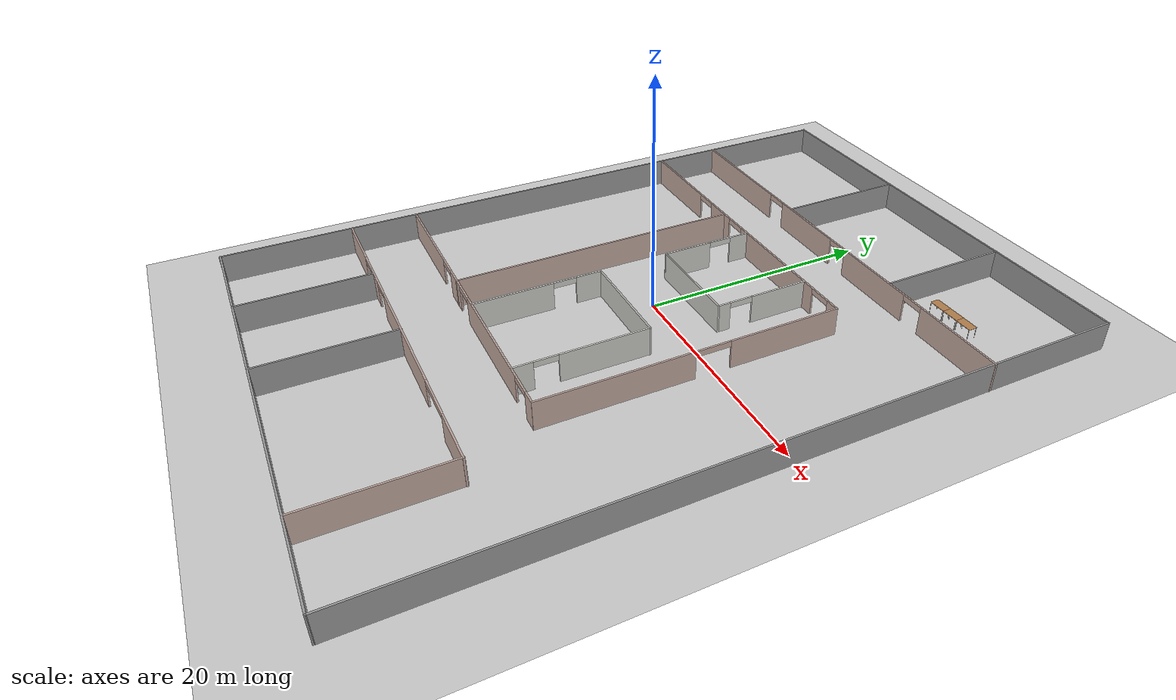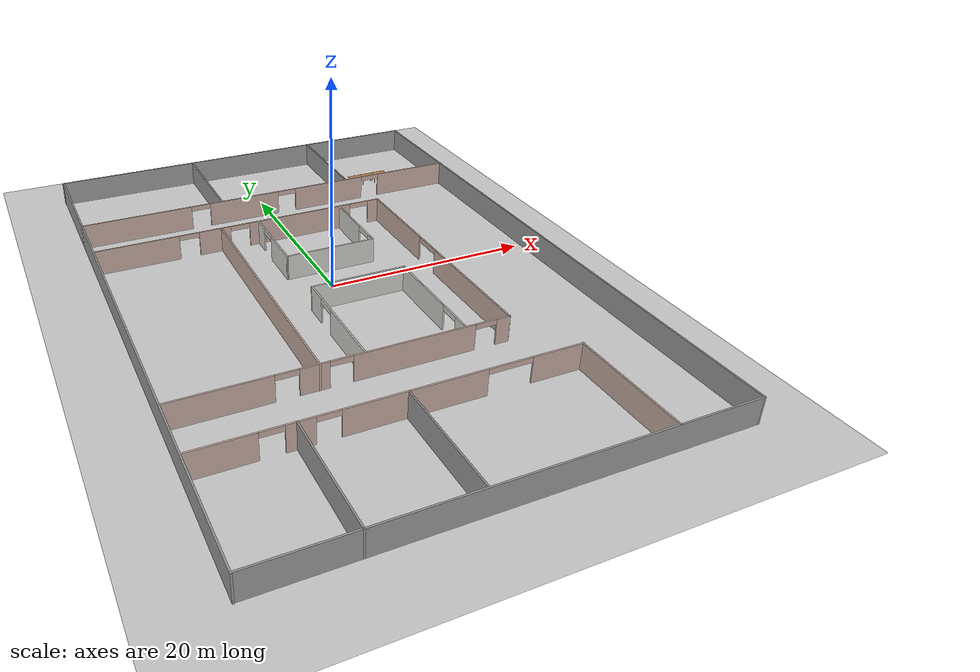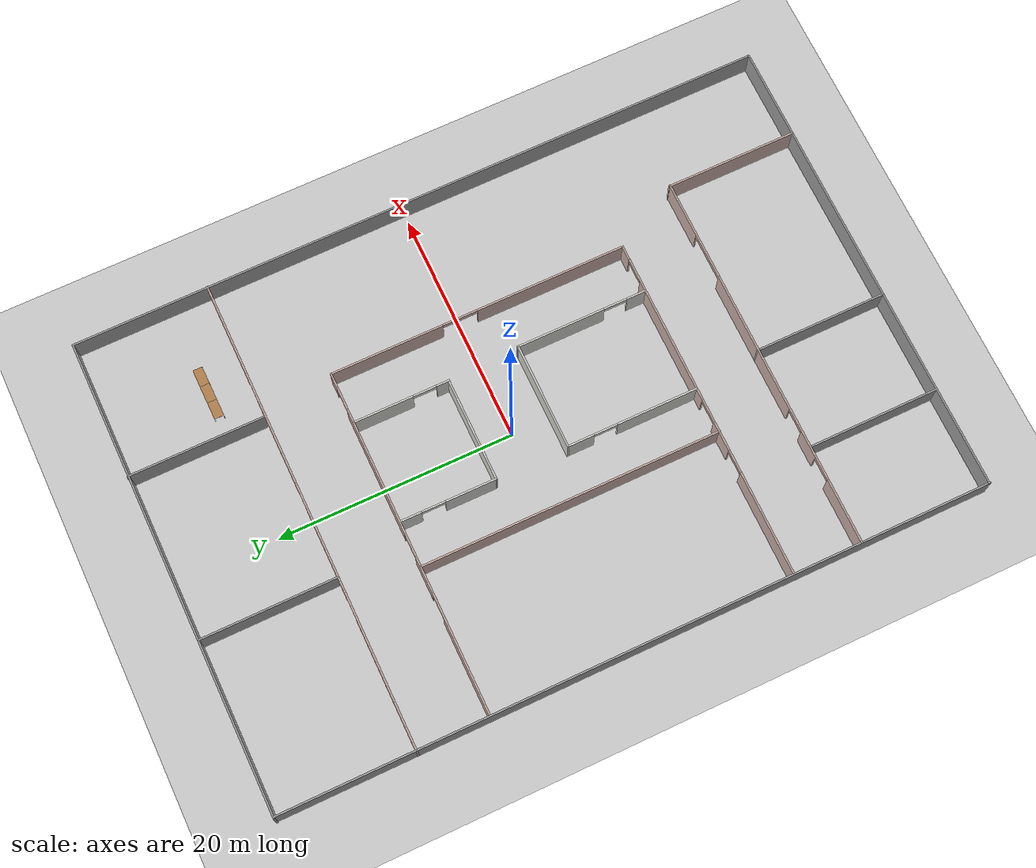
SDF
<sdf version="1.7">
 <world name="default">
  <include><uri>model://ground_plane</uri></include>
  <model name="tongfang1">
   <pose>0.460781 -1.38805 0 0 -0 0</pose>
   <link name="Wall_11">
    <collision name="Wall_11_Collision">
     <geometry><box><size>25.5 0.15 2.5</size></box></geometry>
     <pose>0 0 1.25 0 -0 0</pose>
    </collision>
    <visual name="Wall_11_Visual">
     <pose>0 0 1.25 0 -0 0</pose>
     <geometry><box><size>25.5 0.15 2.5</size></box></geometry>
     <material>
      <script><uri>file://media/materials/scripts/gazebo.material</uri><name>Gazebo/Grey</name></script>
      <ambient>0.760784 0.662745 0.627451 1</ambient>
     </material>
     <meta><layer>0</layer></meta>
    </visual>
    <pose>-7.71283 -0.319512 0 0 -0 -1.5708</pose>
   </link>
   <link name="Wall_12">
    <pose>0.841773 -12.9694 0 0 -0 0</pose>
    <visual name="Wall_12_Visual_0">
     <pose>-8.16378 0 1.25 0 -0 0</pose>
     <geometry><box><size>0.931636 0.15 2.5</size></box></geometry>
     <material>
      <script><uri>file://media/materials/scripts/gazebo.material</uri><name>Gazebo/Grey</name></script>
      <ambient>0.760784 0.662745 0.627451 1</ambient>
     </material>
     <meta><layer>0</layer></meta>
    </visual>
    <collision name="Wall_12_Collision_0">
     <geometry><box><size>0.931636 0.15 2.5</size></box></geometry>
     <pose>-8.16378 0 1.25 0 -0 0</pose>
    </collision>
    <visual name="Wall_12_Visual_1">
     <pose>-0.184896 0 1.25 0 -0 0</pose>
     <geometry><box><size>11.0261 0.15 2.5</size></box></geometry>
     <material>
      <script><uri>file://media/materials/scripts/gazebo.material</uri><name>Gazebo/Grey</name></script>
      <ambient>0.760784 0.662745 0.627451 1</ambient>
     </material>
     <meta><layer>0</layer></meta>
    </visual>
    <collision name="Wall_12_Collision_1">
     <geometry><box><size>11.0261 0.15 2.5</size></box></geometry>
     <pose>-0.184896 0 1.25 0 -0 0</pose>
    </collision>
    <visual name="Wall_12_Visual_2">
     <pose>7.97889 0 1.25 0 -0 0</pose>
     <geometry><box><size>1.30143 0.15 2.5</size></box></geometry>
     <material>
      <script><uri>file://media/materials/scripts/gazebo.material</uri><name>Gazebo/Grey</name></script>
      <ambient>0.760784 0.662745 0.627451 1</ambient>
     </material>
     <meta><layer>0</layer></meta>
    </visual>
    <collision name="Wall_12_Collision_2">
     <geometry><box><size>1.30143 0.15 2.5</size></box></geometry>
     <pose>7.97889 0 1.25 0 -0 0</pose>
    </collision>
    <visual name="Wall_12_Visual_3">
     <pose>-6.69797 0 2.25 0 -0 0</pose>
     <geometry><box><size>2 0.15 0.5</size></box></geometry>
     <material>
      <script><uri>file://media/materials/scripts/gazebo.material</uri><name>Gazebo/Grey</name></script>
      <ambient>0.760784 0.662745 0.627451 1</ambient>
     </material>
     <meta><layer>0</layer></meta>
    </visual>
    <collision name="Wall_12_Collision_3">
     <geometry><box><size>2 0.15 0.5</size></box></geometry>
     <pose>-6.69797 0 2.25 0 -0 0</pose>
    </collision>
    <visual name="Wall_12_Visual_4">
     <pose>6.32817 0 2.25 0 -0 0</pose>
     <geometry><box><size>2 0.15 0.5</size></box></geometry>
     <material>
      <script><uri>file://media/materials/scripts/gazebo.material</uri><name>Gazebo/Grey</name></script>
      <ambient>0.760784 0.662745 0.627451 1</ambient>
     </material>
     <meta><layer>0</layer></meta>
    </visual>
    <collision name="Wall_12_Collision_4">
     <geometry><box><size>2 0.15 0.5</size></box></geometry>
     <pose>6.32817 0 2.25 0 -0 0</pose>
    </collision>
   </link>
   <link name="Wall_16">
    <pose>-3.82458 -7.35827 0 0 -0 -1.5708</pose>
    <visual name="Wall_16_Visual_0">
     <pose>-4.45921 0 1.25 0 -0 0</pose>
     <geometry><box><size>2.33157 0.15 2.5</size></box></geometry>
     <material>
      <script><uri>file://media/materials/scripts/gazebo.material</uri><name>Gazebo/CeilingTiled</name></script>
      <ambient>1 1 1 1</ambient>
     </material>
     <meta><layer>0</layer></meta>
    </visual>
    <collision name="Wall_16_Collision_0">
     <geometry><box><size>2.33157 0.15 2.5</size></box></geometry>
     <pose>-4.45921 0 1.25 0 -0 0</pose>
    </collision>
    <visual name="Wall_16_Visual_1">
     <pose>2.16579 0 1.25 0 -0 0</pose>
     <geometry><box><size>6.91843 0.15 2.5</size></box></geometry>
     <material>
      <script><uri>file://media/materials/scripts/gazebo.material</uri><name>Gazebo/CeilingTiled</name></script>
      <ambient>1 1 1 1</ambient>
     </material>
     <meta><layer>0</layer></meta>
    </visual>
    <collision name="Wall_16_Collision_1">
     <geometry><box><size>6.91843 0.15 2.5</size></box></geometry>
     <pose>2.16579 0 1.25 0 -0 0</pose>
    </collision>
    <visual name="Wall_16_Visual_2">
     <pose>-2.29343 0 2.25 0 -0 0</pose>
     <geometry><box><size>2 0.15 0.5</size></box></geometry>
     <material>
      <script><uri>file://media/materials/scripts/gazebo.material</uri><name>Gazebo/CeilingTiled</name></script>
      <ambient>1 1 1 1</ambient>
     </material>
     <meta><layer>0</layer></meta>
    </visual>
    <collision name="Wall_16_Collision_2">
     <geometry><box><size>2 0.15 0.5</size></box></geometry>
     <pose>-2.29343 0 2.25 0 -0 0</pose>
    </collision>
   </link>
   <link name="Wall_19">
    <pose>5.2537 -7.34878 0 0 -0 -1.5708</pose>
    <visual name="Wall_19_Visual_0">
     <pose>-1.83702 0 1.25 0 -0 0</pose>
     <geometry><box><size>7.57595 0.15 2.5</size></box></geometry>
     <material>
      <script><uri>file://media/materials/scripts/gazebo.material</uri><name>Gazebo/CeilingTiled</name></script>
      <ambient>1 1 1 1</ambient>
     </material>
     <meta><layer>0</layer></meta>
    </visual>
    <collision name="Wall_19_Collision_0">
     <geometry><box><size>7.57595 0.15 2.5</size></box></geometry>
     <pose>-1.83702 0 1.25 0 -0 0</pose>
    </collision>
    <visual name="Wall_19_Visual_1">
     <pose>4.78798 0 1.25 0 -0 0</pose>
     <geometry><box><size>1.67405 0.15 2.5</size></box></geometry>
     <material>
      <script><uri>file://media/materials/scripts/gazebo.material</uri><name>Gazebo/CeilingTiled</name></script>
      <ambient>1 1 1 1</ambient>
     </material>
     <meta><layer>0</layer></meta>
    </visual>
    <collision name="Wall_19_Collision_1">
     <geometry><box><size>1.67405 0.15 2.5</size></box></geometry>
     <pose>4.78798 0 1.25 0 -0 0</pose>
    </collision>
    <visual name="Wall_19_Visual_2">
     <pose>2.95095 0 2.25 0 -0 0</pose>
     <geometry><box><size>2 0.15 0.5</size></box></geometry>
     <material>
      <script><uri>file://media/materials/scripts/gazebo.material</uri><name>Gazebo/CeilingTiled</name></script>
      <ambient>1 1 1 1</ambient>
     </material>
     <meta><layer>0</layer></meta>
    </visual>
    <collision name="Wall_19_Collision_2">
     <geometry><box><size>2 0.15 0.5</size></box></geometry>
     <pose>2.95095 0 2.25 0 -0 0</pose>
    </collision>
   </link>
   <link name="Wall_21">
    <pose>-3.82128 8.36959 0 0 -0 -1.57421</pose>
    <visual name="Wall_21_Visual_0">
     <pose>-3.18561 0 1.25 0 -0 0</pose>
     <geometry><box><size>1.86593 0.15 2.5</size></box></geometry>
     <material>
      <script><uri>file://media/materials/scripts/gazebo.material</uri><name>Gazebo/CeilingTiled</name></script>
      <ambient>1 1 1 1</ambient>
     </material>
     <meta><layer>0</layer></meta>
    </visual>
    <collision name="Wall_21_Collision_0">
     <geometry><box><size>1.86593 0.15 2.5</size></box></geometry>
     <pose>-3.18561 0 1.25 0 -0 0</pose>
    </collision>
    <visual name="Wall_21_Visual_1">
     <pose>1.93297 0 1.25 0 -0 0</pose>
     <geometry><box><size>4.37123 0.15 2.5</size></box></geometry>
     <material>
      <script><uri>file://media/materials/scripts/gazebo.material</uri><name>Gazebo/CeilingTiled</name></script>
      <ambient>1 1 1 1</ambient>
     </material>
     <meta><layer>0</layer></meta>
    </visual>
    <collision name="Wall_21_Collision_1">
     <geometry><box><size>4.37123 0.15 2.5</size></box></geometry>
     <pose>1.93297 0 1.25 0 -0 0</pose>
    </collision>
    <visual name="Wall_21_Visual_2">
     <pose>-1.25265 0 2.25 0 -0 0</pose>
     <geometry><box><size>2 0.15 0.5</size></box></geometry>
     <material>
      <script><uri>file://media/materials/scripts/gazebo.material</uri><name>Gazebo/CeilingTiled</name></script>
      <ambient>1 1 1 1</ambient>
     </material>
     <meta><layer>0</layer></meta>
    </visual>
    <collision name="Wall_21_Collision_2">
     <geometry><box><size>2 0.15 0.5</size></box></geometry>
     <pose>-1.25265 0 2.25 0 -0 0</pose>
    </collision>
   </link>
   <link name="Wall_23">
    <pose>5.01283 8.37814 0 0 -0 1.5708</pose>
    <visual name="Wall_23_Visual_0">
     <pose>-3.55494 0 1.25 0 -0 0</pose>
     <geometry><box><size>1.14011 0.15 2.5</size></box></geometry>
     <material>
      <script><uri>file://media/materials/scripts/gazebo.material</uri><name>Gazebo/CeilingTiled</name></script>
      <ambient>1 1 1 1</ambient>
     </material>
     <meta><layer>0</layer></meta>
    </visual>
    <collision name="Wall_23_Collision_0">
     <geometry><box><size>1.14011 0.15 2.5</size></box></geometry>
     <pose>-3.55494 0 1.25 0 -0 0</pose>
    </collision>
    <visual name="Wall_23_Visual_1">
     <pose>1.57006 0 1.25 0 -0 0</pose>
     <geometry><box><size>5.10989 0.15 2.5</size></box></geometry>
     <material>
      <script><uri>file://media/materials/scripts/gazebo.material</uri><name>Gazebo/CeilingTiled</name></script>
      <ambient>1 1 1 1</ambient>
     </material>
     <meta><layer>0</layer></meta>
    </visual>
    <collision name="Wall_23_Collision_1">
     <geometry><box><size>5.10989 0.15 2.5</size></box></geometry>
     <pose>1.57006 0 1.25 0 -0 0</pose>
    </collision>
    <visual name="Wall_23_Visual_2">
     <pose>-1.98489 0 2.25 0 -0 0</pose>
     <geometry><box><size>2 0.15 0.5</size></box></geometry>
     <material>
      <script><uri>file://media/materials/scripts/gazebo.material</uri><name>Gazebo/CeilingTiled</name></script>
      <ambient>1 1 1 1</ambient>
     </material>
     <meta><layer>0</layer></meta>
    </visual>
    <collision name="Wall_23_Collision_2">
     <geometry><box><size>2 0.15 0.5</size></box></geometry>
     <pose>-1.98489 0 2.25 0 -0 0</pose>
    </collision>
   </link>
   <link name="Wall_25">
    <pose>-13.9496 -12.9694 0 0 -0 3.14159</pose>
    <visual name="Wall_25_Visual_0">
     <pose>-5.42807 0 1.25 0 -0 0</pose>
     <geometry><box><size>1.76748 0.15 2.5</size></box></geometry>
     <material>
      <script><uri>file://media/materials/scripts/gazebo.material</uri><name>Gazebo/Grey</name></script>
      <ambient>0.760784 0.662745 0.627451 1</ambient>
     </material>
     <meta><layer>0</layer></meta>
    </visual>
    <collision name="Wall_25_Collision_0">
     <geometry><box><size>1.76748 0.15 2.5</size></box></geometry>
     <pose>-5.42807 0 1.25 0 -0 0</pose>
    </collision>
    <visual name="Wall_25_Visual_1">
     <pose>1.88374 0 1.25 0 -0 0</pose>
     <geometry><box><size>8.85615 0.15 2.5</size></box></geometry>
     <material>
      <script><uri>file://media/materials/scripts/gazebo.material</uri><name>Gazebo/Grey</name></script>
      <ambient>0.760784 0.662745 0.627451 1</ambient>
     </material>
     <meta><layer>0</layer></meta>
    </visual>
    <collision name="Wall_25_Collision_1">
     <geometry><box><size>8.85615 0.15 2.5</size></box></geometry>
     <pose>1.88374 0 1.25 0 -0 0</pose>
    </collision>
    <visual name="Wall_25_Visual_2">
     <pose>-3.54433 0 2.25 0 -0 0</pose>
     <geometry><box><size>2 0.15 0.5</size></box></geometry>
     <material>
      <script><uri>file://media/materials/scripts/gazebo.material</uri><name>Gazebo/Grey</name></script>
      <ambient>0.760784 0.662745 0.627451 1</ambient>
     </material>
     <meta><layer>0</layer></meta>
    </visual>
    <collision name="Wall_25_Collision_2">
     <geometry><box><size>2 0.15 0.5</size></box></geometry>
     <pose>-3.54433 0 2.25 0 -0 0</pose>
    </collision>
   </link>
   <link name="Wall_27">
    <pose>-3.83512 -18.7917 0 0 -0 0</pose>
    <visual name="Wall_27_Visual_0">
     <pose>-13.7052 0 1.25 0 -0 0</pose>
     <geometry><box><size>5.58965 0.15 2.5</size></box></geometry>
     <material>
      <script><uri>file://media/materials/scripts/gazebo.material</uri><name>Gazebo/Grey</name></script>
      <ambient>0.760784 0.662745 0.627451 1</ambient>
     </material>
     <meta><layer>0</layer></meta>
    </visual>
    <collision name="Wall_27_Collision_0">
     <geometry><box><size>5.58965 0.15 2.5</size></box></geometry>
     <pose>-13.7052 0 1.25 0 -0 0</pose>
    </collision>
    <visual name="Wall_27_Visual_1">
     <pose>-7.74518 0 1.25 0 -0 0</pose>
     <geometry><box><size>2.33035 0.15 2.5</size></box></geometry>
     <material>
      <script><uri>file://media/materials/scripts/gazebo.material</uri><name>Gazebo/Grey</name></script>
      <ambient>0.760784 0.662745 0.627451 1</ambient>
     </material>
     <meta><layer>0</layer></meta>
    </visual>
    <collision name="Wall_27_Collision_1">
     <geometry><box><size>2.33035 0.15 2.5</size></box></geometry>
     <pose>-7.74518 0 1.25 0 -0 0</pose>
    </collision>
    <visual name="Wall_27_Visual_2">
     <pose>1.54079 0 1.25 0 -0 0</pose>
     <geometry><box><size>12.2416 0.15 2.5</size></box></geometry>
     <material>
      <script><uri>file://media/materials/scripts/gazebo.material</uri><name>Gazebo/Grey</name></script>
      <ambient>0.760784 0.662745 0.627451 1</ambient>
     </material>
     <meta><layer>0</layer></meta>
    </visual>
    <collision name="Wall_27_Collision_2">
     <geometry><box><size>12.2416 0.15 2.5</size></box></geometry>
     <pose>1.54079 0 1.25 0 -0 0</pose>
    </collision>
    <visual name="Wall_27_Visual_3">
     <pose>14.0808 0 1.25 0 -0 0</pose>
     <geometry><box><size>4.83841 0.15 2.5</size></box></geometry>
     <material>
      <script><uri>file://media/materials/scripts/gazebo.material</uri><name>Gazebo/Grey</name></script>
      <ambient>0.760784 0.662745 0.627451 1</ambient>
     </material>
     <meta><layer>0</layer></meta>
    </visual>
    <collision name="Wall_27_Collision_3">
     <geometry><box><size>4.83841 0.15 2.5</size></box></geometry>
     <pose>14.0808 0 1.25 0 -0 0</pose>
    </collision>
    <visual name="Wall_27_Visual_4">
     <pose>-9.91035 0 2.25 0 -0 0</pose>
     <geometry><box><size>2 0.15 0.5</size></box></geometry>
     <material>
      <script><uri>file://media/materials/scripts/gazebo.material</uri><name>Gazebo/Grey</name></script>
      <ambient>0.760784 0.662745 0.627451 1</ambient>
     </material>
     <meta><layer>0</layer></meta>
    </visual>
    <collision name="Wall_27_Collision_4">
     <geometry><box><size>2 0.15 0.5</size></box></geometry>
     <pose>-9.91035 0 2.25 0 -0 0</pose>
    </collision>
    <visual name="Wall_27_Visual_5">
     <pose>-5.58001 0 2.25 0 -0 0</pose>
     <geometry><box><size>2 0.15 0.5</size></box></geometry>
     <material>
      <script><uri>file://media/materials/scripts/gazebo.material</uri><name>Gazebo/Grey</name></script>
      <ambient>0.760784 0.662745 0.627451 1</ambient>
     </material>
     <meta><layer>0</layer></meta>
    </visual>
    <collision name="Wall_27_Collision_5">
     <geometry><box><size>2 0.15 0.5</size></box></geometry>
     <pose>-5.58001 0 2.25 0 -0 0</pose>
    </collision>
    <visual name="Wall_27_Visual_6">
     <pose>9.66159 0 2.25 0 -0 0</pose>
     <geometry><box><size>4 0.15 0.5</size></box></geometry>
     <material>
      <script><uri>file://media/materials/scripts/gazebo.material</uri><name>Gazebo/Grey</name></script>
      <ambient>0.760784 0.662745 0.627451 1</ambient>
     </material>
     <meta><layer>0</layer></meta>
    </visual>
    <collision name="Wall_27_Collision_6">
     <geometry><box><size>4 0.15 0.5</size></box></geometry>
     <pose>9.66159 0 2.25 0 -0 0</pose>
    </collision>
   </link>
   <link name="Wall_28">
    <collision name="Wall_28_Collision">
     <geometry><box><size>11.2742 0.15 2.5</size></box></geometry>
     <pose>0 0 1.25 0 -0 0</pose>
    </collision>
    <visual name="Wall_28_Visual">
     <pose>0 0 1.25 0 -0 0</pose>
     <geometry><box><size>11.2742 0.15 2.5</size></box></geometry>
     <material>
      <script><uri>file://media/materials/scripts/gazebo.material</uri><name>Gazebo/Grey</name></script>
      <ambient>0.760784 0.662745 0.627451 1</ambient>
     </material>
     <meta><layer>0</layer></meta>
    </visual>
    <pose>12.5508 -24.3149 0 0 -0 -1.57084</pose>
   </link>
   <link name="Wall_30">
    <collision name="Wall_30_Collision">
     <geometry><box><size>11.25 0.15 2.5</size></box></geometry>
     <pose>0 0 1.25 0 -0 0</pose>
    </collision>
    <visual name="Wall_30_Visual">
     <pose>0 0 1.25 0 -0 0</pose>
     <geometry><box><size>11.25 0.15 2.5</size></box></geometry>
     <material>
      <script><uri>file://media/materials/scripts/gazebo.material</uri><name>Gazebo/Grey</name></script>
      <ambient>1 1 1 1</ambient>
     </material>
     <meta><layer>0</layer></meta>
    </visual>
    <pose>-11.8436 -24.3561 0 0 -0 -1.5708</pose>
   </link>
   <link name="Wall_33">
    <collision name="Wall_33_Collision">
     <geometry><box><size>11.25 0.15 2.5</size></box></geometry>
     <pose>0 0 1.25 0 -0 0</pose>
    </collision>
    <visual name="Wall_33_Visual">
     <pose>0 0 1.25 0 -0 0</pose>
     <geometry><box><size>11.25 0.15 2.5</size></box></geometry>
     <material>
      <script><uri>file://media/materials/scripts/gazebo.material</uri><name>Gazebo/Grey</name></script>
      <ambient>1 1 1 1</ambient>
     </material>
     <meta><layer>0</layer></meta>
    </visual>
    <pose>-3.02976 -24.3326 0 0 -0 -1.5708</pose>
   </link>
   <link name="Wall_41">
    <pose>0.019443 18.4356 0 0 -0 0</pose>
    <visual name="Wall_41_Visual_0">
     <pose>-14.7444 0 1.25 0 -0 0</pose>
     <geometry><box><size>11.2613 0.15 2.5</size></box></geometry>
     <material>
      <script><uri>file://media/materials/scripts/gazebo.material</uri><name>Gazebo/Grey</name></script>
      <ambient>0.760784 0.662745 0.627451 1</ambient>
     </material>
     <meta><layer>0</layer></meta>
    </visual>
    <collision name="Wall_41_Collision_0">
     <geometry><box><size>11.2613 0.15 2.5</size></box></geometry>
     <pose>-14.7444 0 1.25 0 -0 0</pose>
    </collision>
    <visual name="Wall_41_Visual_1">
     <pose>-3.34877 0 1.25 0 -0 0</pose>
     <geometry><box><size>7.52993 0.15 2.5</size></box></geometry>
     <material>
      <script><uri>file://media/materials/scripts/gazebo.material</uri><name>Gazebo/Grey</name></script>
      <ambient>0.760784 0.662745 0.627451 1</ambient>
     </material>
     <meta><layer>0</layer></meta>
    </visual>
    <collision name="Wall_41_Collision_1">
     <geometry><box><size>7.52993 0.15 2.5</size></box></geometry>
     <pose>-3.34877 0 1.25 0 -0 0</pose>
    </collision>
    <visual name="Wall_41_Visual_2">
     <pose>6.33761 0 1.25 0 -0 0</pose>
     <geometry><box><size>7.84283 0.15 2.5</size></box></geometry>
     <material>
      <script><uri>file://media/materials/scripts/gazebo.material</uri><name>Gazebo/Grey</name></script>
      <ambient>0.760784 0.662745 0.627451 1</ambient>
     </material>
     <meta><layer>0</layer></meta>
    </visual>
    <collision name="Wall_41_Collision_2">
     <geometry><box><size>7.84283 0.15 2.5</size></box></geometry>
     <pose>6.33761 0 1.25 0 -0 0</pose>
    </collision>
    <visual name="Wall_41_Visual_3">
     <pose>16.317 0 1.25 0 -0 0</pose>
     <geometry><box><size>8.11597 0.15 2.5</size></box></geometry>
     <material>
      <script><uri>file://media/materials/scripts/gazebo.material</uri><name>Gazebo/Grey</name></script>
      <ambient>0.760784 0.662745 0.627451 1</ambient>
     </material>
     <meta><layer>0</layer></meta>
    </visual>
    <collision name="Wall_41_Collision_3">
     <geometry><box><size>8.11597 0.15 2.5</size></box></geometry>
     <pose>16.317 0 1.25 0 -0 0</pose>
    </collision>
    <visual name="Wall_41_Visual_4">
     <pose>-8.11373 0 2.25 0 -0 0</pose>
     <geometry><box><size>2 0.15 0.5</size></box></geometry>
     <material>
      <script><uri>file://media/materials/scripts/gazebo.material</uri><name>Gazebo/Grey</name></script>
      <ambient>0.760784 0.662745 0.627451 1</ambient>
     </material>
     <meta><layer>0</layer></meta>
    </visual>
    <collision name="Wall_41_Collision_4">
     <geometry><box><size>2 0.15 0.5</size></box></geometry>
     <pose>-8.11373 0 2.25 0 -0 0</pose>
    </collision>
    <visual name="Wall_41_Visual_5">
     <pose>1.4162 0 2.25 0 -0 0</pose>
     <geometry><box><size>2 0.15 0.5</size></box></geometry>
     <material>
      <script><uri>file://media/materials/scripts/gazebo.material</uri><name>Gazebo/Grey</name></script>
      <ambient>0.760784 0.662745 0.627451 1</ambient>
     </material>
     <meta><layer>0</layer></meta>
    </visual>
    <collision name="Wall_41_Collision_5">
     <geometry><box><size>2 0.15 0.5</size></box></geometry>
     <pose>1.4162 0 2.25 0 -0 0</pose>
    </collision>
    <visual name="Wall_41_Visual_6">
     <pose>11.259 0 2.25 0 -0 0</pose>
     <geometry><box><size>2 0.15 0.5</size></box></geometry>
     <material>
      <script><uri>file://media/materials/scripts/gazebo.material</uri><name>Gazebo/Grey</name></script>
      <ambient>0.760784 0.662745 0.627451 1</ambient>
     </material>
     <meta><layer>0</layer></meta>
    </visual>
    <collision name="Wall_41_Collision_6">
     <geometry><box><size>2 0.15 0.5</size></box></geometry>
     <pose>11.259 0 2.25 0 -0 0</pose>
    </collision>
   </link>
   <link name="Wall_43">
    <collision name="Wall_43_Collision">
     <geometry><box><size>11.5 0.15 2.5</size></box></geometry>
     <pose>0 0 1.25 0 -0 0</pose>
    </collision>
    <visual name="Wall_43_Visual">
     <pose>0 0 1.25 0 -0 0</pose>
     <geometry><box><size>11.5 0.15 2.5</size></box></geometry>
     <material>
      <script><uri>file://media/materials/scripts/gazebo.material</uri><name>Gazebo/Grey</name></script>
      <ambient>1 1 1 1</ambient>
     </material>
     <meta><layer>0</layer></meta>
    </visual>
    <pose>-5.78027 24.1374 0 0 -0 -1.5708</pose>
   </link>
   <link name="Wall_45">
    <collision name="Wall_45_Collision">
     <geometry><box><size>11.5 0.15 2.5</size></box></geometry>
     <pose>0 0 1.25 0 -0 0</pose>
    </collision>
    <visual name="Wall_45_Visual">
     <pose>0 0 1.25 0 -0 0</pose>
     <geometry><box><size>11.5 0.15 2.5</size></box></geometry>
     <material>
      <script><uri>file://media/materials/scripts/gazebo.material</uri><name>Gazebo/Grey</name></script>
      <ambient>1 1 1 1</ambient>
     </material>
     <meta><layer>0</layer></meta>
    </visual>
    <pose>8.39938 24.2809 0 0 -0 -1.5708</pose>
   </link>
   <link name="Wall_51">
    <pose>9.41727 -0.263178 0 0 -0 1.5708</pose>
    <visual name="Wall_51_Visual_0">
     <pose>-6.34019 0 1.25 0 -0 0</pose>
     <geometry><box><size>12.882 0.15 2.5</size></box></geometry>
     <material>
      <script><uri>file://media/materials/scripts/gazebo.material</uri><name>Gazebo/Grey</name></script>
      <ambient>0.760784 0.662745 0.627451 1</ambient>
     </material>
     <meta><layer>0</layer></meta>
    </visual>
    <collision name="Wall_51_Collision_0">
     <geometry><box><size>12.882 0.15 2.5</size></box></geometry>
     <pose>-6.34019 0 1.25 0 -0 0</pose>
    </collision>
    <visual name="Wall_51_Visual_1">
     <pose>7.941 0 1.25 0 -0 0</pose>
     <geometry><box><size>9.68039 0.15 2.5</size></box></geometry>
     <material>
      <script><uri>file://media/materials/scripts/gazebo.material</uri><name>Gazebo/Grey</name></script>
      <ambient>0.760784 0.662745 0.627451 1</ambient>
     </material>
     <meta><layer>0</layer></meta>
    </visual>
    <collision name="Wall_51_Collision_1">
     <geometry><box><size>9.68039 0.15 2.5</size></box></geometry>
     <pose>7.941 0 1.25 0 -0 0</pose>
    </collision>
    <visual name="Wall_51_Visual_2">
     <pose>1.60081 0 2.25 0 -0 0</pose>
     <geometry><box><size>3 0.15 0.5</size></box></geometry>
     <material>
      <script><uri>file://media/materials/scripts/gazebo.material</uri><name>Gazebo/Grey</name></script>
      <ambient>0.760784 0.662745 0.627451 1</ambient>
     </material>
     <meta><layer>0</layer></meta>
    </visual>
    <collision name="Wall_51_Collision_2">
     <geometry><box><size>3 0.15 0.5</size></box></geometry>
     <pose>1.60081 0 2.25 0 -0 0</pose>
    </collision>
   </link>
   <link name="Wall_52">
    <pose>-5.37609 12.443 0 0 -0 3.14159</pose>
    <visual name="Wall_52_Visual_0">
     <pose>-14.2244 0 1.25 0 -0 0</pose>
     <geometry><box><size>1.24614 0.15 2.5</size></box></geometry>
     <material>
      <script><uri>file://media/materials/scripts/gazebo.material</uri><name>Gazebo/Grey</name></script>
      <ambient>0.760784 0.662745 0.627451 1</ambient>
     </material>
     <meta><layer>0</layer></meta>
    </visual>
    <collision name="Wall_52_Collision_0">
     <geometry><box><size>1.24614 0.15 2.5</size></box></geometry>
     <pose>-14.2244 0 1.25 0 -0 0</pose>
    </collision>
    <visual name="Wall_52_Visual_1">
     <pose>-6.09392 0 1.25 0 -0 0</pose>
     <geometry><box><size>11.0148 0.15 2.5</size></box></geometry>
     <material>
      <script><uri>file://media/materials/scripts/gazebo.material</uri><name>Gazebo/Grey</name></script>
      <ambient>0.760784 0.662745 0.627451 1</ambient>
     </material>
     <meta><layer>0</layer></meta>
    </visual>
    <collision name="Wall_52_Collision_1">
     <geometry><box><size>11.0148 0.15 2.5</size></box></geometry>
     <pose>-6.09392 0 1.25 0 -0 0</pose>
    </collision>
    <visual name="Wall_52_Visual_2">
     <pose>3.01793 0 1.25 0 -0 0</pose>
     <geometry><box><size>3.2089 0.15 2.5</size></box></geometry>
     <material>
      <script><uri>file://media/materials/scripts/gazebo.material</uri><name>Gazebo/Grey</name></script>
      <ambient>0.760784 0.662745 0.627451 1</ambient>
     </material>
     <meta><layer>0</layer></meta>
    </visual>
    <collision name="Wall_52_Collision_2">
     <geometry><box><size>3.2089 0.15 2.5</size></box></geometry>
     <pose>3.01793 0 1.25 0 -0 0</pose>
    </collision>
    <visual name="Wall_52_Visual_3">
     <pose>10.7349 0 1.25 0 -0 0</pose>
     <geometry><box><size>8.22509 0.15 2.5</size></box></geometry>
     <material>
      <script><uri>file://media/materials/scripts/gazebo.material</uri><name>Gazebo/Grey</name></script>
      <ambient>0.760784 0.662745 0.627451 1</ambient>
     </material>
     <meta><layer>0</layer></meta>
    </visual>
    <collision name="Wall_52_Collision_3">
     <geometry><box><size>8.22509 0.15 2.5</size></box></geometry>
     <pose>10.7349 0 1.25 0 -0 0</pose>
    </collision>
    <visual name="Wall_52_Visual_4">
     <pose>-12.6013 0 2.25 0 -0 0</pose>
     <geometry><box><size>2 0.15 0.5</size></box></geometry>
     <material>
      <script><uri>file://media/materials/scripts/gazebo.material</uri><name>Gazebo/Grey</name></script>
      <ambient>0.760784 0.662745 0.627451 1</ambient>
     </material>
     <meta><layer>0</layer></meta>
    </visual>
    <collision name="Wall_52_Collision_4">
     <geometry><box><size>2 0.15 0.5</size></box></geometry>
     <pose>-12.6013 0 2.25 0 -0 0</pose>
    </collision>
    <visual name="Wall_52_Visual_5">
     <pose>0.413486 0 2.25 0 -0 0</pose>
     <geometry><box><size>2 0.15 0.5</size></box></geometry>
     <material>
      <script><uri>file://media/materials/scripts/gazebo.material</uri><name>Gazebo/Grey</name></script>
      <ambient>0.760784 0.662745 0.627451 1</ambient>
     </material>
     <meta><layer>0</layer></meta>
    </visual>
    <collision name="Wall_52_Collision_5">
     <geometry><box><size>2 0.15 0.5</size></box></geometry>
     <pose>0.413486 0 2.25 0 -0 0</pose>
    </collision>
    <visual name="Wall_52_Visual_6">
     <pose>5.62238 0 2.25 0 -0 0</pose>
     <geometry><box><size>2 0.15 0.5</size></box></geometry>
     <material>
      <script><uri>file://media/materials/scripts/gazebo.material</uri><name>Gazebo/Grey</name></script>
      <ambient>0.760784 0.662745 0.627451 1</ambient>
     </material>
     <meta><layer>0</layer></meta>
    </visual>
    <collision name="Wall_52_Collision_6">
     <geometry><box><size>2 0.15 0.5</size></box></geometry>
     <pose>5.62238 0 2.25 0 -0 0</pose>
    </collision>
   </link>
   <link name="Wall_60">
    <collision name="Wall_60_Collision">
     <geometry><box><size>60 0.15 2.5</size></box></geometry>
     <pose>0 0 1.25 0 -0 0</pose>
    </collision>
    <visual name="Wall_60_Visual">
     <pose>0 0 1.25 0 -0 0</pose>
     <geometry><box><size>60 0.15 2.5</size></box></geometry>
     <material>
      <script><uri>file://media/materials/scripts/gazebo.material</uri><name>Gazebo/Grey</name></script>
      <ambient>0.870588 0.866667 0.854902 1</ambient>
     </material>
     <meta><layer>0</layer></meta>
    </visual>
    <pose>-20.2688 -0.030923 0 0 -0 -1.5708</pose>
   </link>
   <link name="Wall_7">
    <collision name="Wall_7_Collision">
     <geometry><box><size>40.75 0.15 2.5</size></box></geometry>
     <pose>0 0 1.25 0 -0 0</pose>
    </collision>
    <visual name="Wall_7_Visual">
     <pose>0 0 1.25 0 -0 0</pose>
     <geometry><box><size>40.75 0.15 2.5</size></box></geometry>
     <material>
      <script><uri>file://media/materials/scripts/gazebo.material</uri><name>Gazebo/Grey</name></script>
      <ambient>0.870588 0.866667 0.854902 1</ambient>
     </material>
     <meta><layer>0</layer></meta>
    </visual>
    <pose>0.034467 -29.904 0 0 -0 0</pose>
   </link>
   <link name="Wall_8">
    <collision name="Wall_8_Collision">
     <geometry><box><size>59.9484 0.15 2.5</size></box></geometry>
     <pose>0 0 1.25 0 -0 0</pose>
    </collision>
    <visual name="Wall_8_Visual">
     <pose>0 0 1.25 0 -0 0</pose>
     <geometry><box><size>59.9484 0.15 2.5</size></box></geometry>
     <material>
      <script><uri>file://media/materials/scripts/gazebo.material</uri><name>Gazebo/Grey</name></script>
      <ambient>0.870588 0.866667 0.854902 1</ambient>
     </material>
     <meta><layer>0</layer></meta>
    </visual>
    <pose>20.3 -0.004979 0 0 -0 1.57195</pose>
   </link>
   <link name="Wall_88">
    <collision name="Wall_88_Collision">
     <geometry><box><size>9 0.15 2.5</size></box></geometry>
     <pose>0 0 1.25 0 -0 0</pose>
    </collision>
    <visual name="Wall_88_Visual">
     <pose>0 0 1.25 0 -0 0</pose>
     <geometry><box><size>9 0.15 2.5</size></box></geometry>
     <material>
      <script><uri>file://media/materials/scripts/gazebo.material</uri><name>Gazebo/CeilingTiled</name></script>
      <ambient>1 1 1 1</ambient>
     </material>
     <meta><layer>0</layer></meta>
    </visual>
    <pose>0.589911 4.32604 0 0 -0 0</pose>
   </link>
   <link name="Wall_9">
    <collision name="Wall_9_Collision">
     <geometry><box><size>40.75 0.15 2.5</size></box></geometry>
     <pose>0 0 1.25 0 -0 0</pose>
    </collision>
    <visual name="Wall_9_Visual">
     <pose>0 0 1.25 0 -0 0</pose>
     <geometry><box><size>40.75 0.15 2.5</size></box></geometry>
     <material>
      <script><uri>file://media/materials/scripts/gazebo.material</uri><name>Gazebo/Grey</name></script>
      <ambient>0.870588 0.866667 0.854902 1</ambient>
     </material>
     <meta><layer>0</layer></meta>
    </visual>
    <pose>-0.034555 29.8941 0 0 -0 3.14159</pose>
   </link>
   <link name="Wall_90">
    <collision name="Wall_90_Collision">
     <geometry><box><size>9.25 0.15 2.5</size></box></geometry>
     <pose>0 0 1.25 0 -0 0</pose>
    </collision>
    <visual name="Wall_90_Visual">
     <pose>0 0 1.25 0 -0 0</pose>
     <geometry><box><size>9.25 0.15 2.5</size></box></geometry>
     <material>
      <script><uri>file://media/materials/scripts/gazebo.material</uri><name>Gazebo/CeilingTiled</name></script>
      <ambient>1 1 1 1</ambient>
     </material>
     <meta><layer>0</layer></meta>
    </visual>
    <pose>0.725421 -1.80827 0 0 -0 0</pose>
   </link>
   <static>1</static>
  </model>
  <model name="table_clone_0_clone_0_clone_10_clone_0">
   <static>1</static>
   <link name="link">
    <collision name="surface">
     <pose>0 0 1 0 -0 0</pose>
     <geometry><box><size>1.5 0.8 0.03</size></box></geometry>
     <surface><friction><ode><mu>0.6</mu><mu2>0.6</mu2></ode></friction></surface>
    </collision>
    <visual name="visual1">
     <pose>0 0 1 0 -0 0</pose>
     <geometry><box><size>1.5 0.8 0.03</size></box></geometry>
     <material>
      <script><uri>file://media/materials/scripts/gazebo.material</uri><name>Gazebo/Wood</name></script>
     </material>
    </visual>
    <collision name="front_left_leg">
     <pose>0.68 0.38 0.5 0 -0 0</pose>
     <geometry><cylinder><radius>0.02</radius><length>1</length></cylinder></geometry>
    </collision>
    <visual name="front_left_leg">
     <pose>0.68 0.38 0.5 0 -0 0</pose>
     <geometry><cylinder><radius>0.02</radius><length>1</length></cylinder></geometry>
     <material>
      <script><uri>file://media/materials/scripts/gazebo.material</uri><name>Gazebo/Grey</name></script>
     </material>
    </visual>
    <collision name="front_right_leg">
     <pose>0.68 -0.38 0.5 0 -0 0</pose>
     <geometry><cylinder><radius>0.02</radius><length>1</length></cylinder></geometry>
    </collision>
    <visual name="front_right_leg">
     <pose>0.68 -0.38 0.5 0 -0 0</pose>
     <geometry><cylinder><radius>0.02</radius><length>1</length></cylinder></geometry>
     <material>
      <script><uri>file://media/materials/scripts/gazebo.material</uri><name>Gazebo/Grey</name></script>
     </material>
    </visual>
    <collision name="back_right_leg">
     <pose>-0.68 -0.38 0.5 0 -0 0</pose>
     <geometry><cylinder><radius>0.02</radius><length>1</length></cylinder></geometry>
    </collision>
    <visual name="back_right_leg">
     <pose>-0.68 -0.38 0.5 0 -0 0</pose>
     <geometry><cylinder><radius>0.02</radius><length>1</length></cylinder></geometry>
     <material>
      <script><uri>file://media/materials/scripts/gazebo.material</uri><name>Gazebo/Grey</name></script>
     </material>
    </visual>
    <collision name="back_left_leg">
     <pose>-0.68 0.38 0.5 0 -0 0</pose>
     <geometry><cylinder><radius>0.02</radius><length>1</length></cylinder></geometry>
    </collision>
    <visual name="back_left_leg">
     <pose>-0.68 0.38 0.5 0 -0 0</pose>
     <geometry><cylinder><radius>0.02</radius><length>1</length></cylinder></geometry>
     <material>
      <script><uri>file://media/materials/scripts/gazebo.material</uri><name>Gazebo/Grey</name></script>
     </material>
    </visual>
   </link>
   <pose>14.5559 20.3815 0 0 -0 0.009638</pose>
  </model>
  <model name="table_clone_0_clone_0_clone_10_clone_1">
   <static>1</static>
   <link name="link">
    <collision name="surface">
     <pose>0 0 1 0 -0 0</pose>
     <geometry><box><size>1.5 0.8 0.03</size></box></geometry>
     <surface><friction><ode><mu>0.6</mu><mu2>0.6</mu2></ode></friction></surface>
    </collision>
    <visual name="visual1">
     <pose>0 0 1 0 -0 0</pose>
     <geometry><box><size>1.5 0.8 0.03</size></box></geometry>
     <material>
      <script><uri>file://media/materials/scripts/gazebo.material</uri><name>Gazebo/Wood</name></script>
     </material>
    </visual>
    <collision name="front_left_leg">
     <pose>0.68 0.38 0.5 0 -0 0</pose>
     <geometry><cylinder><radius>0.02</radius><length>1</length></cylinder></geometry>
    </collision>
    <visual name="front_left_leg">
     <pose>0.68 0.38 0.5 0 -0 0</pose>
     <geometry><cylinder><radius>0.02</radius><length>1</length></cylinder></geometry>
     <material>
      <script><uri>file://media/materials/scripts/gazebo.material</uri><name>Gazebo/Grey</name></script>
     </material>
    </visual>
    <collision name="front_right_leg">
     <pose>0.68 -0.38 0.5 0 -0 0</pose>
     <geometry><cylinder><radius>0.02</radius><length>1</length></cylinder></geometry>
    </collision>
    <visual name="front_right_leg">
     <pose>0.68 -0.38 0.5 0 -0 0</pose>
     <geometry><cylinder><radius>0.02</radius><length>1</length></cylinder></geometry>
     <material>
      <script><uri>file://media/materials/scripts/gazebo.material</uri><name>Gazebo/Grey</name></script>
     </material>
    </visual>
    <collision name="back_right_leg">
     <pose>-0.68 -0.38 0.5 0 -0 0</pose>
     <geometry><cylinder><radius>0.02</radius><length>1</length></cylinder></geometry>
    </collision>
    <visual name="back_right_leg">
     <pose>-0.68 -0.38 0.5 0 -0 0</pose>
     <geometry><cylinder><radius>0.02</radius><length>1</length></cylinder></geometry>
     <material>
      <script><uri>file://media/materials/scripts/gazebo.material</uri><name>Gazebo/Grey</name></script>
     </material>
    </visual>
    <collision name="back_left_leg">
     <pose>-0.68 0.38 0.5 0 -0 0</pose>
     <geometry><cylinder><radius>0.02</radius><length>1</length></cylinder></geometry>
    </collision>
    <visual name="back_left_leg">
     <pose>-0.68 0.38 0.5 0 -0 0</pose>
     <geometry><cylinder><radius>0.02</radius><length>1</length></cylinder></geometry>
     <material>
      <script><uri>file://media/materials/scripts/gazebo.material</uri><name>Gazebo/Grey</name></script>
     </material>
    </visual>
   </link>
   <pose>13.058 20.3758 0 0 -0 0.009638</pose>
  </model>
  <model name="table_clone_0_clone_0_clone_10_clone_2">
   <static>1</static>
   <link name="link">
    <collision name="surface">
     <pose>0 0 1 0 -0 0</pose>
     <geometry><box><size>1.5 0.8 0.03</size></box></geometry>
     <surface><friction><ode><mu>0.6</mu><mu2>0.6</mu2></ode></friction></surface>
    </collision>
    <visual name="visual1">
     <pose>0 0 1 0 -0 0</pose>
     <geometry><box><size>1.5 0.8 0.03</size></box></geometry>
     <material>
      <script><uri>file://media/materials/scripts/gazebo.material</uri><name>Gazebo/Wood</name></script>
     </material>
    </visual>
    <collision name="front_left_leg">
     <pose>0.68 0.38 0.5 0 -0 0</pose>
     <geometry><cylinder><radius>0.02</radius><length>1</length></cylinder></geometry>
    </collision>
    <visual name="front_left_leg">
     <pose>0.68 0.38 0.5 0 -0 0</pose>
     <geometry><cylinder><radius>0.02</radius><length>1</length></cylinder></geometry>
     <material>
      <script><uri>file://media/materials/scripts/gazebo.material</uri><name>Gazebo/Grey</name></script>
     </material>
    </visual>
    <collision name="front_right_leg">
     <pose>0.68 -0.38 0.5 0 -0 0</pose>
     <geometry><cylinder><radius>0.02</radius><length>1</length></cylinder></geometry>
    </collision>
    <visual name="front_right_leg">
     <pose>0.68 -0.38 0.5 0 -0 0</pose>
     <geometry><cylinder><radius>0.02</radius><length>1</length></cylinder></geometry>
     <material>
      <script><uri>file://media/materials/scripts/gazebo.material</uri><name>Gazebo/Grey</name></script>
     </material>
    </visual>
    <collision name="back_right_leg">
     <pose>-0.68 -0.38 0.5 0 -0 0</pose>
     <geometry><cylinder><radius>0.02</radius><length>1</length></cylinder></geometry>
    </collision>
    <visual name="back_right_leg">
     <pose>-0.68 -0.38 0.5 0 -0 0</pose>
     <geometry><cylinder><radius>0.02</radius><length>1</length></cylinder></geometry>
     <material>
      <script><uri>file://media/materials/scripts/gazebo.material</uri><name>Gazebo/Grey</name></script>
     </material>
    </visual>
    <collision name="back_left_leg">
     <pose>-0.68 0.38 0.5 0 -0 0</pose>
     <geometry><cylinder><radius>0.02</radius><length>1</length></cylinder></geometry>
    </collision>
    <visual name="back_left_leg">
     <pose>-0.68 0.38 0.5 0 -0 0</pose>
     <geometry><cylinder><radius>0.02</radius><length>1</length></cylinder></geometry>
     <material>
      <script><uri>file://media/materials/scripts/gazebo.material</uri><name>Gazebo/Grey</name></script>
     </material>
    </visual>
   </link>
   <pose>11.5799 20.3618 0 0 -0 0.009638</pose>
  </model>
 </world>
</sdf>
